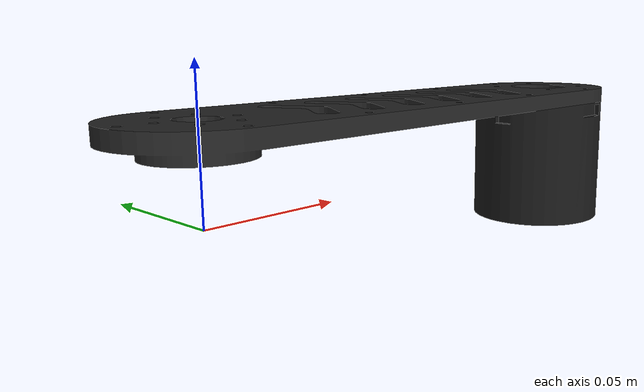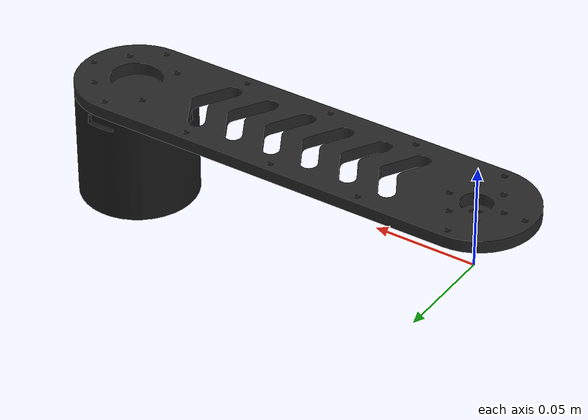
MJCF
<mujoco model="link2">
  <default>
    <default class="visual">
      <geom group="2" type="mesh" contype="0" conaffinity="0"/>
    </default>
    <default class="collision">
      <geom group="3" type="mesh"/>
    </default>
  </default>
  <asset>
    <material name="black_shell" specular="0.5" shininess="0.0" rgba="0.150000 0.150000 0.150000 1.000000"/>
    <material name="motor.002" specular="0.5" shininess="0.25" rgba="0.100000 0.100000 0.100000 1.000000"/>
    <mesh file="link2_0.obj"/>
    <mesh file="link2_1.obj"/>
    <mesh file="link2_collision_0.obj"/>
    <mesh file="link2_collision_1.obj"/>
  </asset>
  <worldbody>
    <body name="link2">
      <geom mesh="link2_0" material="motor.002" class="visual"/>
      <geom mesh="link2_1" material="black_shell" class="visual"/>
      <geom mesh="link2_collision_0" rgba="0.8093860548931625 0.7021994918365655 0.5782142232660392 1" class="collision"/>
      <geom mesh="link2_collision_1" rgba="0.8826045872430607 0.6868219788709957 0.7811940879382135 1" class="collision"/>
    </body>
  </worldbody>
</mujoco>
